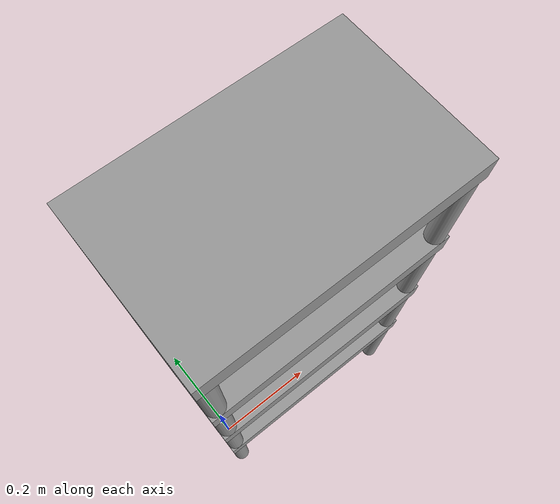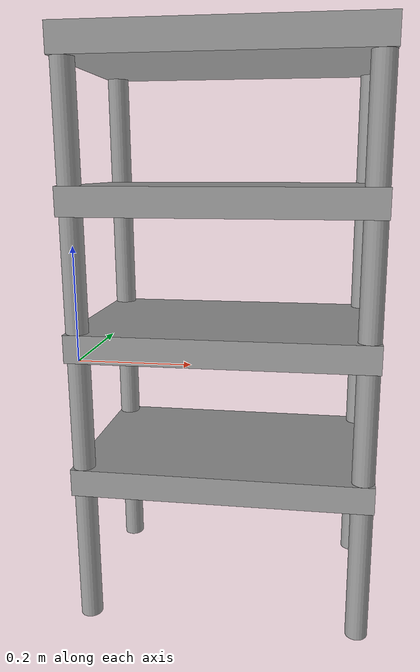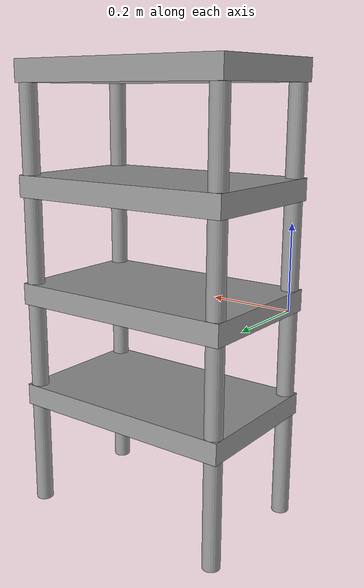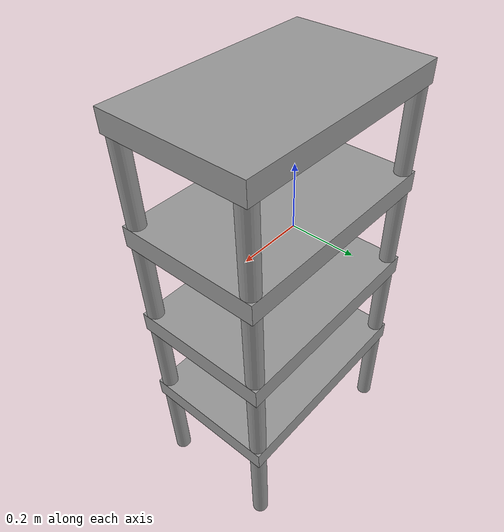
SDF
<?xml version='1.0'?>
<sdf version='1.7'>
  <model name='Shelf'>
    <link name='link'>
      <inertial>
        <mass>1</mass>
        <inertia>
          <ixx>0.145833</ixx>
          <ixy>0</ixy>
          <ixz>0</ixz>
          <iyy>0.145833</iyy>
          <iyz>0</iyz>
          <izz>0.125</izz>
        </inertia>
        <pose>0 0 0 0 -0 0</pose>
      </inertial>
      <self_collide>0</self_collide>
      <enable_wind>0</enable_wind>
      <kinematic>0</kinematic>
      <pose>0 0 0 0 -0 0</pose>
      <gravity>1</gravity>
      <visual name='visual'>
        <geometry>
          <cylinder>
            <radius>0.02</radius>
            <length>1</length>
          </cylinder>
        </geometry>
        <material>
          <script>
            <name>Gazebo/Grey</name>
            <uri>file://media/materials/scripts/gazebo.material</uri>
          </script>
          <shader type='pixel'>
            <normal_map>__default__</normal_map>
          </shader>
          <ambient>0.3 0.3 0.3 1</ambient>
          <diffuse>0 0 0 1</diffuse>
          <specular>0.01 0.01 0.01 1</specular>
          <emissive>0 0 0 1</emissive>
        </material>
        <pose>0 0 0 0 -0 0</pose>
        <transparency>0</transparency>
        <cast_shadows>1</cast_shadows>
      </visual>
      <collision name='collision'>
        <laser_retro>0</laser_retro>
        <max_contacts>10</max_contacts>
        <pose>0 0 0 0 -0 0</pose>
        <geometry>
          <cylinder>
            <radius>0.02</radius>
            <length>1</length>
          </cylinder>
        </geometry>
        <surface>
          <friction>
            <ode>
              <mu>1</mu>
              <mu2>1</mu2>
              <fdir1>0 0 0</fdir1>
              <slip1>0</slip1>
              <slip2>0</slip2>
            </ode>
            <torsional>
              <coefficient>1</coefficient>
              <patch_radius>0</patch_radius>
              <surface_radius>0</surface_radius>
              <use_patch_radius>1</use_patch_radius>
              <ode>
                <slip>0</slip>
              </ode>
            </torsional>
          </friction>
          <bounce>
            <restitution_coefficient>0</restitution_coefficient>
            <threshold>1e+06</threshold>
          </bounce>
          <contact>
            <collide_without_contact>0</collide_without_contact>
            <collide_without_contact_bitmask>1</collide_without_contact_bitmask>
            <collide_bitmask>1</collide_bitmask>
            <ode>
              <soft_cfm>0</soft_cfm>
              <soft_erp>0.2</soft_erp>
              <kp>1e+13</kp>
              <kd>1</kd>
              <max_vel>0.01</max_vel>
              <min_depth>0</min_depth>
            </ode>
            <bullet>
              <split_impulse>1</split_impulse>
              <split_impulse_penetration_threshold>-0.01</split_impulse_penetration_threshold>
              <soft_cfm>0</soft_cfm>
              <soft_erp>0.2</soft_erp>
              <kp>1e+13</kp>
              <kd>1</kd>
            </bullet>
          </contact>
        </surface>
      </collision>
    </link>
    <link name='link_25'>
      <inertial>
        <mass>1</mass>
        <inertia>
          <ixx>0.166667</ixx>
          <ixy>0</ixy>
          <ixz>0</ixz>
          <iyy>0.166667</iyy>
          <iyz>0</iyz>
          <izz>0.166667</izz>
        </inertia>
        <pose>0 0 0 0 -0 0</pose>
      </inertial>
      <pose>0.25 0.15 0.525 0 -0 0</pose>
      <gravity>1</gravity>
      <self_collide>0</self_collide>
      <kinematic>0</kinematic>
      <enable_wind>0</enable_wind>
      <visual name='visual'>
        <pose>0 0 0 0 -0 0</pose>
        <geometry>
          <box>
            <size>0.54 0.34 0.05</size>
          </box>
        </geometry>
        <material>
          <lighting>1</lighting>
          <script>
            <uri>file://media/materials/scripts/gazebo.material</uri>
            <name>Gazebo/Grey</name>
          </script>
          <shader type='pixel'>
            <normal_map>__default__</normal_map>
          </shader>
          <ambient>0.3 0.3 0.3 1</ambient>
          <diffuse>0 0 0 1</diffuse>
          <specular>0.01 0.01 0.01 1</specular>
          <emissive>0 0 0 1</emissive>
        </material>
        <transparency>0</transparency>
        <cast_shadows>1</cast_shadows>
      </visual>
      <collision name='collision'>
        <laser_retro>0</laser_retro>
        <max_contacts>10</max_contacts>
        <pose>0 0 0 0 -0 0</pose>
        <geometry>
          <box>
            <size>0.54 0.34 0.05</size>
          </box>
        </geometry>
        <surface>
          <friction>
            <ode>
              <mu>1</mu>
              <mu2>1</mu2>
              <fdir1>0 0 0</fdir1>
              <slip1>0</slip1>
              <slip2>0</slip2>
            </ode>
            <torsional>
              <coefficient>1</coefficient>
              <patch_radius>0</patch_radius>
              <surface_radius>0</surface_radius>
              <use_patch_radius>1</use_patch_radius>
              <ode>
                <slip>0</slip>
              </ode>
            </torsional>
          </friction>
          <bounce>
            <restitution_coefficient>0</restitution_coefficient>
            <threshold>1e+06</threshold>
          </bounce>
          <contact>
            <collide_without_contact>0</collide_without_contact>
            <collide_without_contact_bitmask>1</collide_without_contact_bitmask>
            <collide_bitmask>1</collide_bitmask>
            <ode>
              <soft_cfm>0</soft_cfm>
              <soft_erp>0.2</soft_erp>
              <kp>1e+13</kp>
              <kd>1</kd>
              <max_vel>0.01</max_vel>
              <min_depth>0</min_depth>
            </ode>
            <bullet>
              <split_impulse>1</split_impulse>
              <split_impulse_penetration_threshold>-0.01</split_impulse_penetration_threshold>
              <soft_cfm>0</soft_cfm>
              <soft_erp>0.2</soft_erp>
              <kp>1e+13</kp>
              <kd>1</kd>
            </bullet>
          </contact>
        </surface>
      </collision>
    </link>
    <link name='link_25_clone'>
      <inertial>
        <mass>1</mass>
        <inertia>
          <ixx>0.166667</ixx>
          <ixy>0</ixy>
          <ixz>0</ixz>
          <iyy>0.166667</iyy>
          <iyz>0</iyz>
          <izz>0.166667</izz>
        </inertia>
        <pose>0 0 0 0 -0 0</pose>
      </inertial>
      <pose>0.25 0.15 0.275 0 -0 0</pose>
      <gravity>1</gravity>
      <self_collide>0</self_collide>
      <kinematic>0</kinematic>
      <enable_wind>0</enable_wind>
      <visual name='visual'>
        <pose>0 0 0 0 -0 0</pose>
        <geometry>
          <box>
            <size>0.54 0.34 0.05</size>
          </box>
        </geometry>
        <material>
          <lighting>1</lighting>
          <script>
            <uri>file://media/materials/scripts/gazebo.material</uri>
            <name>Gazebo/Grey</name>
          </script>
          <shader type='pixel'>
            <normal_map>__default__</normal_map>
          </shader>
          <ambient>0.3 0.3 0.3 1</ambient>
          <diffuse>0 0 0 1</diffuse>
          <specular>0.01 0.01 0.01 1</specular>
          <emissive>0 0 0 1</emissive>
        </material>
        <transparency>0</transparency>
        <cast_shadows>1</cast_shadows>
      </visual>
      <collision name='collision'>
        <laser_retro>0</laser_retro>
        <max_contacts>10</max_contacts>
        <pose>0 0 0 0 -0 0</pose>
        <geometry>
          <box>
            <size>0.54 0.34 0.05</size>
          </box>
        </geometry>
        <surface>
          <friction>
            <ode>
              <mu>1</mu>
              <mu2>1</mu2>
              <fdir1>0 0 0</fdir1>
              <slip1>0</slip1>
              <slip2>0</slip2>
            </ode>
            <torsional>
              <coefficient>1</coefficient>
              <patch_radius>0</patch_radius>
              <surface_radius>0</surface_radius>
              <use_patch_radius>1</use_patch_radius>
              <ode>
                <slip>0</slip>
              </ode>
            </torsional>
          </friction>
          <bounce>
            <restitution_coefficient>0</restitution_coefficient>
            <threshold>1e+06</threshold>
          </bounce>
          <contact>
            <collide_without_contact>0</collide_without_contact>
            <collide_without_contact_bitmask>1</collide_without_contact_bitmask>
            <collide_bitmask>1</collide_bitmask>
            <ode>
              <soft_cfm>0</soft_cfm>
              <soft_erp>0.2</soft_erp>
              <kp>1e+13</kp>
              <kd>1</kd>
              <max_vel>0.01</max_vel>
              <min_depth>0</min_depth>
            </ode>
            <bullet>
              <split_impulse>1</split_impulse>
              <split_impulse_penetration_threshold>-0.01</split_impulse_penetration_threshold>
              <soft_cfm>0</soft_cfm>
              <soft_erp>0.2</soft_erp>
              <kp>1e+13</kp>
              <kd>1</kd>
            </bullet>
          </contact>
        </surface>
      </collision>
    </link>
    <link name='link_25_clone_0'>
      <inertial>
        <mass>1</mass>
        <inertia>
          <ixx>0.166667</ixx>
          <ixy>0</ixy>
          <ixz>0</ixz>
          <iyy>0.166667</iyy>
          <iyz>0</iyz>
          <izz>0.166667</izz>
        </inertia>
        <pose>0 0 0 0 -0 0</pose>
      </inertial>
      <pose>0.25 0.15 -0.225 0 -0 0</pose>
      <gravity>1</gravity>
      <self_collide>0</self_collide>
      <kinematic>0</kinematic>
      <enable_wind>0</enable_wind>
      <visual name='visual'>
        <pose>0 0 0 0 -0 0</pose>
        <geometry>
          <box>
            <size>0.54 0.34 0.05</size>
          </box>
        </geometry>
        <material>
          <lighting>1</lighting>
          <script>
            <uri>file://media/materials/scripts/gazebo.material</uri>
            <name>Gazebo/Grey</name>
          </script>
          <shader type='pixel'>
            <normal_map>__default__</normal_map>
          </shader>
          <ambient>0.3 0.3 0.3 1</ambient>
          <diffuse>0 0 0 1</diffuse>
          <specular>0.01 0.01 0.01 1</specular>
          <emissive>0 0 0 1</emissive>
        </material>
        <transparency>0</transparency>
        <cast_shadows>1</cast_shadows>
      </visual>
      <collision name='collision'>
        <laser_retro>0</laser_retro>
        <max_contacts>10</max_contacts>
        <pose>0 0 0 0 -0 0</pose>
        <geometry>
          <box>
            <size>0.54 0.34 0.05</size>
          </box>
        </geometry>
        <surface>
          <friction>
            <ode>
              <mu>1</mu>
              <mu2>1</mu2>
              <fdir1>0 0 0</fdir1>
              <slip1>0</slip1>
              <slip2>0</slip2>
            </ode>
            <torsional>
              <coefficient>1</coefficient>
              <patch_radius>0</patch_radius>
              <surface_radius>0</surface_radius>
              <use_patch_radius>1</use_patch_radius>
              <ode>
                <slip>0</slip>
              </ode>
            </torsional>
          </friction>
          <bounce>
            <restitution_coefficient>0</restitution_coefficient>
            <threshold>1e+06</threshold>
          </bounce>
          <contact>
            <collide_without_contact>0</collide_without_contact>
            <collide_without_contact_bitmask>1</collide_without_contact_bitmask>
            <collide_bitmask>1</collide_bitmask>
            <ode>
              <soft_cfm>0</soft_cfm>
              <soft_erp>0.2</soft_erp>
              <kp>1e+13</kp>
              <kd>1</kd>
              <max_vel>0.01</max_vel>
              <min_depth>0</min_depth>
            </ode>
            <bullet>
              <split_impulse>1</split_impulse>
              <split_impulse_penetration_threshold>-0.01</split_impulse_penetration_threshold>
              <soft_cfm>0</soft_cfm>
              <soft_erp>0.2</soft_erp>
              <kp>1e+13</kp>
              <kd>1</kd>
            </bullet>
          </contact>
        </surface>
      </collision>
    </link>
    <link name='link_25_clone_1'>
      <inertial>
        <mass>1</mass>
        <inertia>
          <ixx>0.166667</ixx>
          <ixy>0</ixy>
          <ixz>0</ixz>
          <iyy>0.166667</iyy>
          <iyz>0</iyz>
          <izz>0.166667</izz>
        </inertia>
        <pose>0 0 0 0 -0 0</pose>
      </inertial>
      <pose>0.25 0.15 0.025 0 -0 0</pose>
      <gravity>1</gravity>
      <self_collide>0</self_collide>
      <kinematic>0</kinematic>
      <enable_wind>0</enable_wind>
      <visual name='visual'>
        <pose>0 0 0 0 -0 0</pose>
        <geometry>
          <box>
            <size>0.54 0.34 0.05</size>
          </box>
        </geometry>
        <material>
          <lighting>1</lighting>
          <script>
            <uri>file://media/materials/scripts/gazebo.material</uri>
            <name>Gazebo/Grey</name>
          </script>
          <shader type='pixel'>
            <normal_map>__default__</normal_map>
          </shader>
          <ambient>0.3 0.3 0.3 1</ambient>
          <diffuse>0 0 0 1</diffuse>
          <specular>0.01 0.01 0.01 1</specular>
          <emissive>0 0 0 1</emissive>
        </material>
        <transparency>0</transparency>
        <cast_shadows>1</cast_shadows>
      </visual>
      <collision name='collision'>
        <laser_retro>0</laser_retro>
        <max_contacts>10</max_contacts>
        <pose>0 0 0 0 -0 0</pose>
        <geometry>
          <box>
            <size>0.54 0.34 0.05</size>
          </box>
        </geometry>
        <surface>
          <friction>
            <ode>
              <mu>1</mu>
              <mu2>1</mu2>
              <fdir1>0 0 0</fdir1>
              <slip1>0</slip1>
              <slip2>0</slip2>
            </ode>
            <torsional>
              <coefficient>1</coefficient>
              <patch_radius>0</patch_radius>
              <surface_radius>0</surface_radius>
              <use_patch_radius>1</use_patch_radius>
              <ode>
                <slip>0</slip>
              </ode>
            </torsional>
          </friction>
          <bounce>
            <restitution_coefficient>0</restitution_coefficient>
            <threshold>1e+06</threshold>
          </bounce>
          <contact>
            <collide_without_contact>0</collide_without_contact>
            <collide_without_contact_bitmask>1</collide_without_contact_bitmask>
            <collide_bitmask>1</collide_bitmask>
            <ode>
              <soft_cfm>0</soft_cfm>
              <soft_erp>0.2</soft_erp>
              <kp>1e+13</kp>
              <kd>1</kd>
              <max_vel>0.01</max_vel>
              <min_depth>0</min_depth>
            </ode>
            <bullet>
              <split_impulse>1</split_impulse>
              <split_impulse_penetration_threshold>-0.01</split_impulse_penetration_threshold>
              <soft_cfm>0</soft_cfm>
              <soft_erp>0.2</soft_erp>
              <kp>1e+13</kp>
              <kd>1</kd>
            </bullet>
          </contact>
        </surface>
      </collision>
    </link>
    <link name='link_clone'>
      <inertial>
        <mass>1</mass>
        <inertia>
          <ixx>0.145833</ixx>
          <ixy>0</ixy>
          <ixz>0</ixz>
          <iyy>0.145833</iyy>
          <iyz>0</iyz>
          <izz>0.125</izz>
        </inertia>
        <pose>0 0 0 0 -0 0</pose>
      </inertial>
      <self_collide>0</self_collide>
      <enable_wind>0</enable_wind>
      <kinematic>0</kinematic>
      <pose>0.5 0.3 0 0 -0 0</pose>
      <gravity>1</gravity>
      <visual name='visual'>
        <geometry>
          <cylinder>
            <radius>0.02</radius>
            <length>1</length>
          </cylinder>
        </geometry>
        <material>
          <script>
            <name>Gazebo/Grey</name>
            <uri>file://media/materials/scripts/gazebo.material</uri>
          </script>
          <shader type='pixel'>
            <normal_map>__default__</normal_map>
          </shader>
          <ambient>0.3 0.3 0.3 1</ambient>
          <diffuse>0 0 0 1</diffuse>
          <specular>0.01 0.01 0.01 1</specular>
          <emissive>0 0 0 1</emissive>
        </material>
        <pose>0 0 0 0 -0 0</pose>
        <transparency>0</transparency>
        <cast_shadows>1</cast_shadows>
      </visual>
      <collision name='collision'>
        <laser_retro>0</laser_retro>
        <max_contacts>10</max_contacts>
        <pose>0 0 0 0 -0 0</pose>
        <geometry>
          <cylinder>
            <radius>0.02</radius>
            <length>1</length>
          </cylinder>
        </geometry>
        <surface>
          <friction>
            <ode>
              <mu>1</mu>
              <mu2>1</mu2>
              <fdir1>0 0 0</fdir1>
              <slip1>0</slip1>
              <slip2>0</slip2>
            </ode>
            <torsional>
              <coefficient>1</coefficient>
              <patch_radius>0</patch_radius>
              <surface_radius>0</surface_radius>
              <use_patch_radius>1</use_patch_radius>
              <ode>
                <slip>0</slip>
              </ode>
            </torsional>
          </friction>
          <bounce>
            <restitution_coefficient>0</restitution_coefficient>
            <threshold>1e+06</threshold>
          </bounce>
          <contact>
            <collide_without_contact>0</collide_without_contact>
            <collide_without_contact_bitmask>1</collide_without_contact_bitmask>
            <collide_bitmask>1</collide_bitmask>
            <ode>
              <soft_cfm>0</soft_cfm>
              <soft_erp>0.2</soft_erp>
              <kp>1e+13</kp>
              <kd>1</kd>
              <max_vel>0.01</max_vel>
              <min_depth>0</min_depth>
            </ode>
            <bullet>
              <split_impulse>1</split_impulse>
              <split_impulse_penetration_threshold>-0.01</split_impulse_penetration_threshold>
              <soft_cfm>0</soft_cfm>
              <soft_erp>0.2</soft_erp>
              <kp>1e+13</kp>
              <kd>1</kd>
            </bullet>
          </contact>
        </surface>
      </collision>
    </link>
    <link name='link_clone_0'>
      <inertial>
        <mass>1</mass>
        <inertia>
          <ixx>0.145833</ixx>
          <ixy>0</ixy>
          <ixz>0</ixz>
          <iyy>0.145833</iyy>
          <iyz>0</iyz>
          <izz>0.125</izz>
        </inertia>
        <pose>0 0 0 0 -0 0</pose>
      </inertial>
      <self_collide>0</self_collide>
      <enable_wind>0</enable_wind>
      <kinematic>0</kinematic>
      <pose>0 0.3 0 0 -0 0</pose>
      <gravity>1</gravity>
      <visual name='visual'>
        <geometry>
          <cylinder>
            <radius>0.02</radius>
            <length>1</length>
          </cylinder>
        </geometry>
        <material>
          <script>
            <name>Gazebo/Grey</name>
            <uri>file://media/materials/scripts/gazebo.material</uri>
          </script>
          <shader type='pixel'>
            <normal_map>__default__</normal_map>
          </shader>
          <ambient>0.3 0.3 0.3 1</ambient>
          <diffuse>0 0 0 1</diffuse>
          <specular>0.01 0.01 0.01 1</specular>
          <emissive>0 0 0 1</emissive>
        </material>
        <pose>0 0 0 0 -0 0</pose>
        <transparency>0</transparency>
        <cast_shadows>1</cast_shadows>
      </visual>
      <collision name='collision'>
        <laser_retro>0</laser_retro>
        <max_contacts>10</max_contacts>
        <pose>0 0 0 0 -0 0</pose>
        <geometry>
          <cylinder>
            <radius>0.02</radius>
            <length>1</length>
          </cylinder>
        </geometry>
        <surface>
          <friction>
            <ode>
              <mu>1</mu>
              <mu2>1</mu2>
              <fdir1>0 0 0</fdir1>
              <slip1>0</slip1>
              <slip2>0</slip2>
            </ode>
            <torsional>
              <coefficient>1</coefficient>
              <patch_radius>0</patch_radius>
              <surface_radius>0</surface_radius>
              <use_patch_radius>1</use_patch_radius>
              <ode>
                <slip>0</slip>
              </ode>
            </torsional>
          </friction>
          <bounce>
            <restitution_coefficient>0</restitution_coefficient>
            <threshold>1e+06</threshold>
          </bounce>
          <contact>
            <collide_without_contact>0</collide_without_contact>
            <collide_without_contact_bitmask>1</collide_without_contact_bitmask>
            <collide_bitmask>1</collide_bitmask>
            <ode>
              <soft_cfm>0</soft_cfm>
              <soft_erp>0.2</soft_erp>
              <kp>1e+13</kp>
              <kd>1</kd>
              <max_vel>0.01</max_vel>
              <min_depth>0</min_depth>
            </ode>
            <bullet>
              <split_impulse>1</split_impulse>
              <split_impulse_penetration_threshold>-0.01</split_impulse_penetration_threshold>
              <soft_cfm>0</soft_cfm>
              <soft_erp>0.2</soft_erp>
              <kp>1e+13</kp>
              <kd>1</kd>
            </bullet>
          </contact>
        </surface>
      </collision>
    </link>
    <link name='link_clone_1'>
      <inertial>
        <mass>1</mass>
        <inertia>
          <ixx>0.145833</ixx>
          <ixy>0</ixy>
          <ixz>0</ixz>
          <iyy>0.145833</iyy>
          <iyz>0</iyz>
          <izz>0.125</izz>
        </inertia>
        <pose>0 0 0 0 -0 0</pose>
      </inertial>
      <self_collide>0</self_collide>
      <enable_wind>0</enable_wind>
      <kinematic>0</kinematic>
      <pose>0.5 0 0 0 -0 0</pose>
      <gravity>1</gravity>
      <visual name='visual'>
        <geometry>
          <cylinder>
            <radius>0.02</radius>
            <length>1</length>
          </cylinder>
        </geometry>
        <material>
          <script>
            <name>Gazebo/Grey</name>
            <uri>file://media/materials/scripts/gazebo.material</uri>
          </script>
          <shader type='pixel'>
            <normal_map>__default__</normal_map>
          </shader>
          <ambient>0.3 0.3 0.3 1</ambient>
          <diffuse>0 0 0 1</diffuse>
          <specular>0.01 0.01 0.01 1</specular>
          <emissive>0 0 0 1</emissive>
        </material>
        <pose>0 0 0 0 -0 0</pose>
        <transparency>0</transparency>
        <cast_shadows>1</cast_shadows>
      </visual>
      <collision name='collision'>
        <laser_retro>0</laser_retro>
        <max_contacts>10</max_contacts>
        <pose>0 0 0 0 -0 0</pose>
        <geometry>
          <cylinder>
            <radius>0.02</radius>
            <length>1</length>
          </cylinder>
        </geometry>
        <surface>
          <friction>
            <ode>
              <mu>1</mu>
              <mu2>1</mu2>
              <fdir1>0 0 0</fdir1>
              <slip1>0</slip1>
              <slip2>0</slip2>
            </ode>
            <torsional>
              <coefficient>1</coefficient>
              <patch_radius>0</patch_radius>
              <surface_radius>0</surface_radius>
              <use_patch_radius>1</use_patch_radius>
              <ode>
                <slip>0</slip>
              </ode>
            </torsional>
          </friction>
          <bounce>
            <restitution_coefficient>0</restitution_coefficient>
            <threshold>1e+06</threshold>
          </bounce>
          <contact>
            <collide_without_contact>0</collide_without_contact>
            <collide_without_contact_bitmask>1</collide_without_contact_bitmask>
            <collide_bitmask>1</collide_bitmask>
            <ode>
              <soft_cfm>0</soft_cfm>
              <soft_erp>0.2</soft_erp>
              <kp>1e+13</kp>
              <kd>1</kd>
              <max_vel>0.01</max_vel>
              <min_depth>0</min_depth>
            </ode>
            <bullet>
              <split_impulse>1</split_impulse>
              <split_impulse_penetration_threshold>-0.01</split_impulse_penetration_threshold>
              <soft_cfm>0</soft_cfm>
              <soft_erp>0.2</soft_erp>
              <kp>1e+13</kp>
              <kd>1</kd>
            </bullet>
          </contact>
        </surface>
      </collision>
    </link>
    <static>1</static>
    <allow_auto_disable>1</allow_auto_disable>
  </model>
</sdf>
